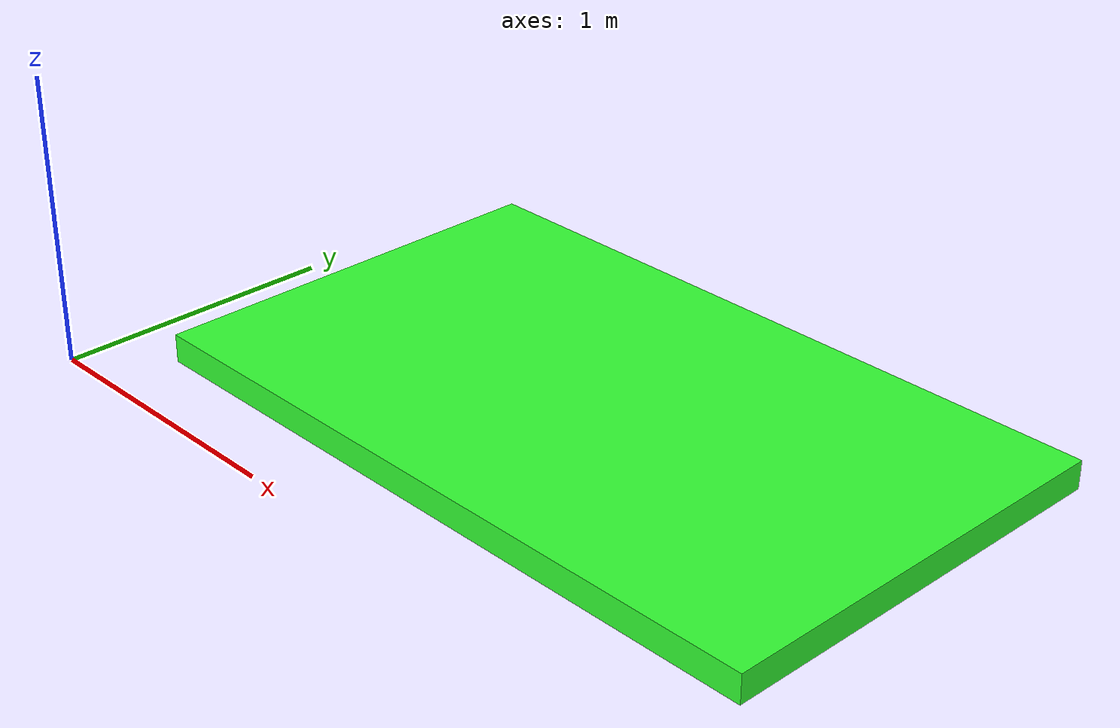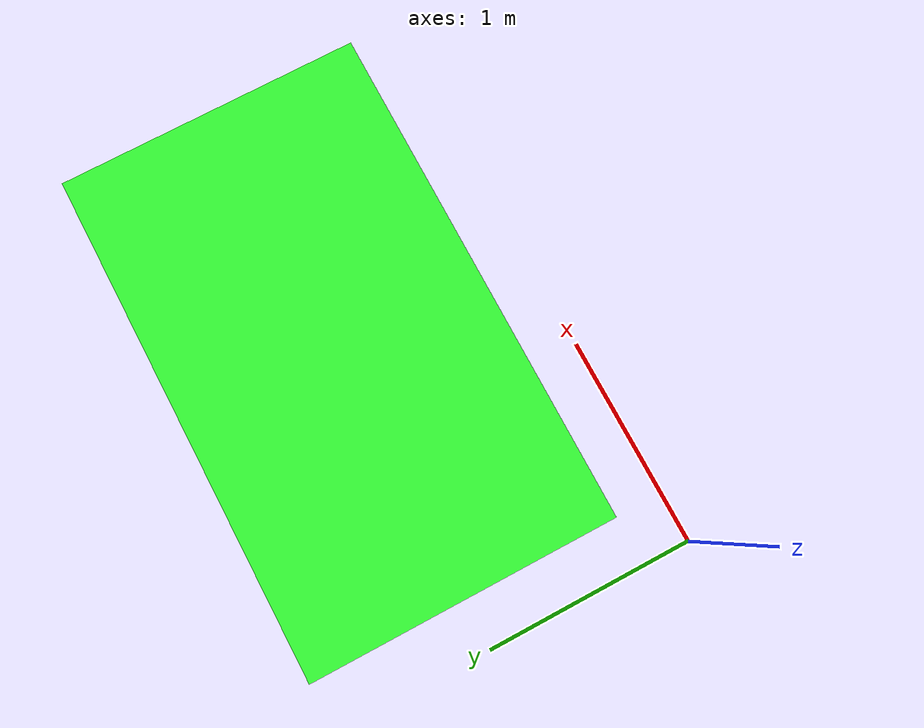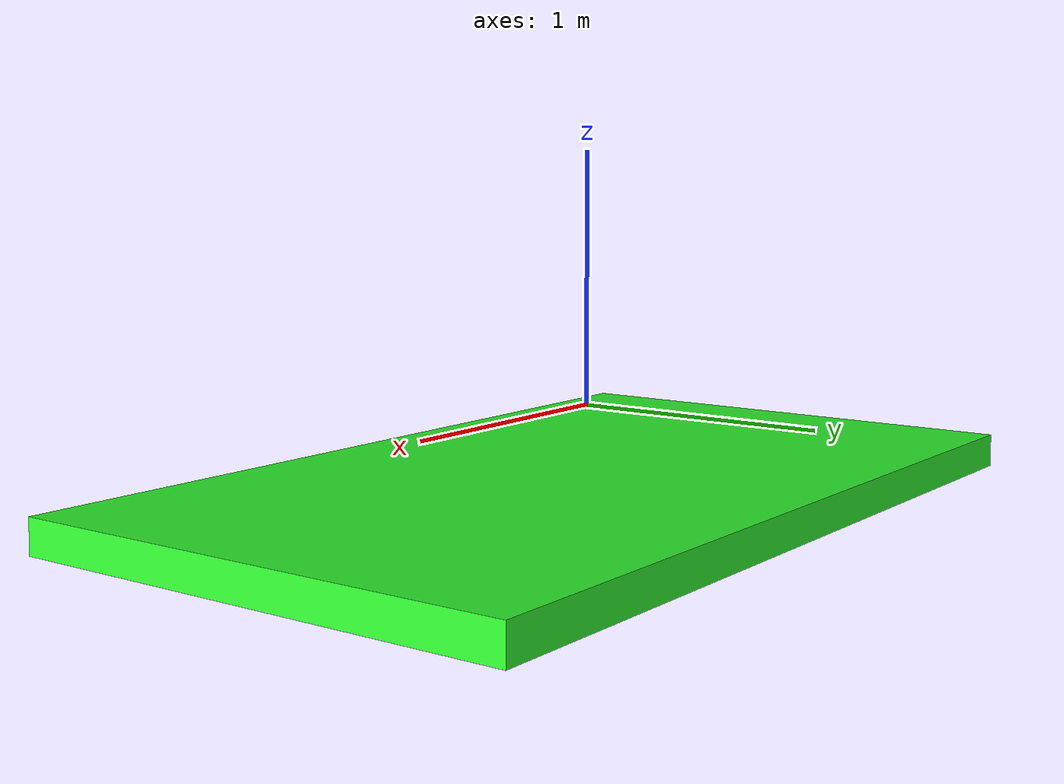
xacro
<?xml version="1.0"?>
<robot xmlns:xacro="http://www.ros.org/wiki/xacro"  name="robot">

    <!-- This is an example of a URDF. -->
    <!-- As we move through the file, new things to note will be pointed out. -->
    <!-- It's not meant an example of GOOD design, but an example of some of the various features of URDF/xacro. -->

    <!-- This will include all the contents of example_include.xacro first. Go check it out! -->

    <!-- This first link called "world" is empty -->
    <link name="world"></link>

    <!-- A simple fixed joint from our empty world link, to our base. -->
    <!-- The base origin is offset from the world origin. -->
    <joint name="base_joint" type="fixed">
        <origin xyz="1.5 1.0 0" rpy="0 0 0"/>
        <parent link="world"/>
        <child link="base_link"/>
    </joint>

    <!-- base_link is a large rectangular plate. Some things to note: -->
    <!-- - We set the visual origin Z to half the box height, so that the link origin sits at the bottom of the box -->
    <!-- - We set the collision to be identical to the visual -->
    <!-- - We specified the colour manually (but still need to enter a name) -->
    <!-- - We specified all the inertial parameters manually -->
    <link name="base_link">
        <visual>
            <origin xyz="0 0 0.05" rpy="0 0 0"/>
            <geometry>
                <box size="2.5 1.5 0.1" />
            </geometry>
            <material name="green">
                <color rgba="0.2 1 0.2 1"/>
            </material>
        </visual>
        <collision>
            <origin xyz="0 0 0.05" rpy="0 0 0"/>
            <geometry>
                <box size="2.5 1.5 0.1" />
            </geometry>
        </collision>
        <inertial>
            <origin xyz="0 0 0.05" rpy="0 0 0"/>
            <mass value="12" />
            <inertia ixx="2.26" ixy="0.0" ixz="0.0" iyy="6.26" iyz="0.0" izz="8.5" />
        </inertial>
    </link>

    <!-- slider_joint lets slider_link move back and forth along the top of the base in one dimension.  -->
    <!-- - Origin is set to one of the top edges of the base_link box, so that our link skims across the top  -->
    <!-- - It moves along the X axis -->
    <!-- - We need to specify limits for the motion -->

    <!-- slider_link is the box skimming across the top of the base. Its parameters are similar to the base_link, however: -->
    <!-- - Instead of explicitly describing a colour, it uses the named material "blue". It knows about "blue" that material was included in example_include.xacro. -->
    <!-- - Instead of explicitly describing the inertia, we use a macro that was defined in the example_include.xacro -->

    <!-- arm_joint describes the rotation of the arm and is centred around the top corner of the slider box. -->
    <!-- - The axis of rotation is -1 in Y, so that positive is "up" -->
    <!-- - The upper limit uses xacro's mathematical features -->

    <!-- arm_link describes the arm -->
    <!-- - We use the "property" feature to define the arm length and radius and use them multiple times -->
    <!-- - The visual/collision origin is set to halfway along the length (similar to the box), but also with a rotation (again using the mathematical features). -->
    <!--   This is because the cylinder extends along the Z axis by default, but we want it to be along the X axis (when the joint is at 0) -->

    <!-- camera_joint describes where the camera is relative to the arm -->
    <!-- - Even though the camera isn't moving relative to the arm, it will probably be helpful to have its own link/frame rather than just adding more visuals to the arm -->
    <!-- - For this example, the camera_link origin will be at the centre of the camera's "sensor" -->

    <!-- camera_link describes the camera at the end of the arm -->
    <!-- - It has multiple visual elements, which ultimately get combined together -->
    <!-- - Even if we specify different materials, RViz will just colour them all the same as the first -->
    <!-- - Although we could also specify multiple collision geometries, instead we just use a single box that encompasses the whole camera -->

</robot>
